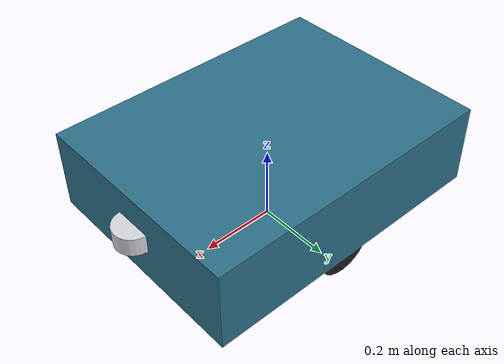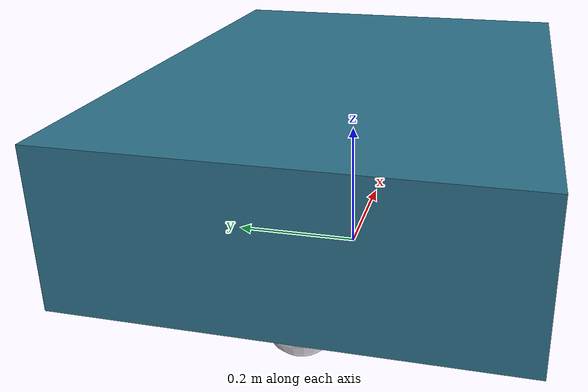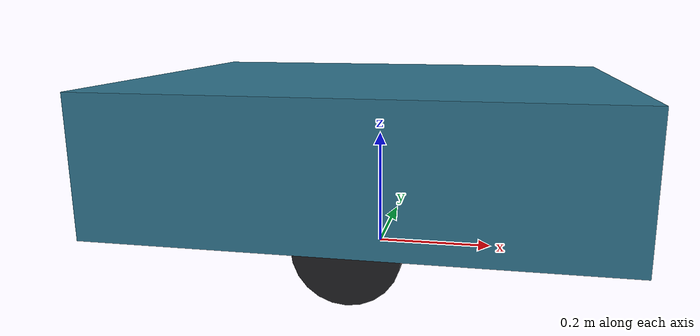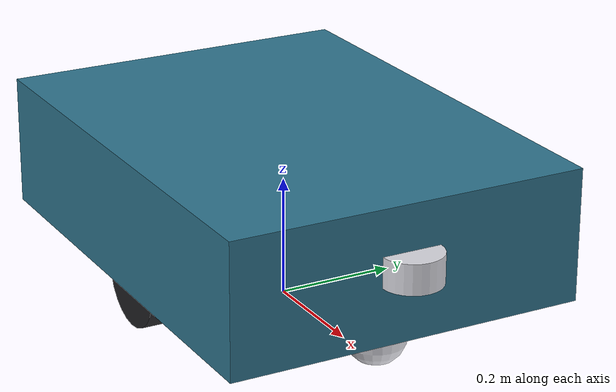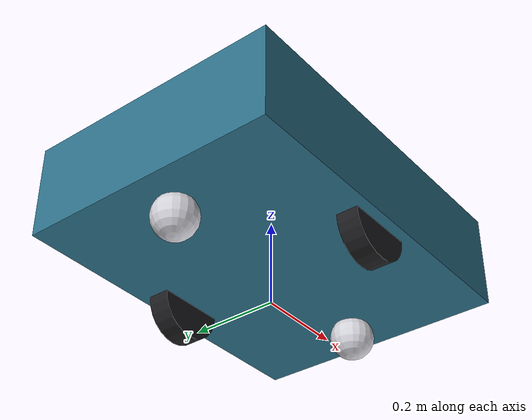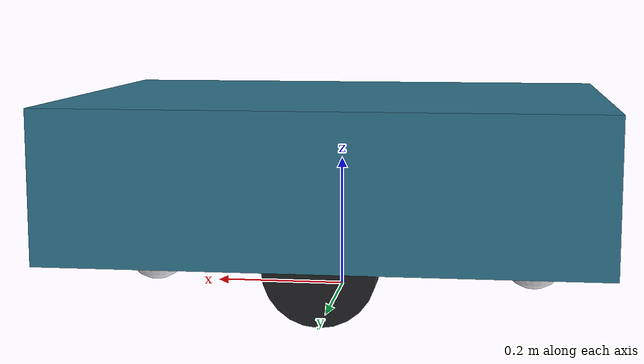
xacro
<?xml version="1.0"?>
<robot xmlns:xacro="http://www.ros.org/wiki/xacro" name="p2bot_lift_m">

  <!-- ..................... namespace / prefix ..................... -->
  <xacro:arg name="namespace" default=""/>
  <xacro:property name="ns" value="$(arg namespace)"/>
  <xacro:property name="fp" value="${ns + '/' if ns != '' else ''}"/>   <!-- link/frame/topic prefix -->

  <!-- ..................... 치수 ([표1] LIFT_M) ..................... -->
  <xacro:property name="chassis_l" value="0.8"/>
  <xacro:property name="chassis_w" value="0.6"/>
  <xacro:property name="total_h"   value="0.3"/>     <!-- 지면~상단 -->
  <xacro:property name="chassis_mass" value="60"/>

  <xacro:property name="wheel_radius" value="0.08"/>
  <xacro:property name="wheel_width"  value="0.05"/>
  <xacro:property name="wheel_track"  value="0.5"/>
  <xacro:property name="wheel_mass"   value="1.0"/>

  <!-- 섀시 범위 z: 0.08 ~ 0.30 -->
  <xacro:property name="chassis_h" value="${total_h - wheel_radius}"/>

  <xacro:property name="caster_radius" value="0.05"/>   <!-- < wheel_radius 여야 접지 성립 -->
  <xacro:property name="caster_x" value="0.30"/>

  <!-- 라이다: LIFT_L과 공통 스캔 평면 z=0.20. 섀시 내부 높이라 전방 돌출 마운트 -->
  <xacro:property name="lidar_z"      value="0.20"/>
  <xacro:property name="lidar_radius" value="0.05"/>
  <xacro:property name="lidar_x" value="${chassis_l/2}"/>

  <xacro:arg name="two_d_lidar_enabled" default="true"/>

  <!-- ..................... 재질 (커스텀 색) ..................... -->
  <material name="p2_body">  <color rgba="0.18 0.45 0.55 1.0"/></material>
  <material name="p2_wheel"> <color rgba="0.12 0.12 0.13 1.0"/></material>
  <material name="p2_trim">  <color rgba="0.85 0.85 0.88 1.0"/></material>

  <!-- ..................... 관성 매크로 ..................... -->
  <xacro:macro name="box_inertia" params="m x y z">
    <inertial><mass value="${m}"/>
      <inertia ixx="${m*(y*y+z*z)/12}" ixy="0" ixz="0"
               iyy="${m*(x*x+z*z)/12}" iyz="0" izz="${m*(x*x+y*y)/12}"/>
    </inertial>
  </xacro:macro>
  <xacro:macro name="cyl_inertia" params="m r h">
    <inertial><mass value="${m}"/>
      <inertia ixx="${m*(3*r*r+h*h)/12}" ixy="0" ixz="0"
               iyy="${m*(3*r*r+h*h)/12}" iyz="0" izz="${m*r*r/2}"/>
    </inertial>
  </xacro:macro>
  <xacro:macro name="sph_inertia" params="m r">
    <inertial><mass value="${m}"/>
      <inertia ixx="${2*m*r*r/5}" ixy="0" ixz="0"
               iyy="${2*m*r*r/5}" iyz="0" izz="${2*m*r*r/5}"/>
    </inertial>
  </xacro:macro>

  <!-- ..................... GAZEBO 플러그인 (모델 레벨만; ns 프리픽스) ..................... -->
  <!-- sensors/imu 시스템은 서버 레벨(시뮬당 1개)이라 월드(p2.sdf)에 둠 — 멀티로봇 씬 중복 crash 방지. -->
  <gazebo>
    <plugin filename="gz-sim-joint-state-publisher-system"
            name="gz::sim::systems::JointStatePublisher">
      <topic>/${fp}joint_states</topic>
      <joint_name>left_wheel_joint</joint_name>
      <joint_name>right_wheel_joint</joint_name>
    </plugin>
    <plugin filename="gz-sim-diff-drive-system" name="gz::sim::systems::DiffDrive">
      <left_joint>left_wheel_joint</left_joint>
      <right_joint>right_wheel_joint</right_joint>
      <wheel_separation>${wheel_track}</wheel_separation>
      <wheel_radius>${wheel_radius}</wheel_radius>
      <odom_publish_frequency>30</odom_publish_frequency>
      <topic>/${fp}cmd_vel</topic>
      <frame_id>${fp}odom</frame_id>
      <child_frame_id>${fp}base_footprint</child_frame_id>
    </plugin>
    <!-- ground-truth odom + tf(odom→base_footprint). tf는 로봇별 gz토픽 /{ns}/tf -->
    <plugin filename="gz-sim-odometry-publisher-system"
            name="gz::sim::systems::OdometryPublisher">
      <odom_frame>${fp}odom</odom_frame>
      <robot_base_frame>${fp}base_footprint</robot_base_frame>
      <odom_topic>/${fp}odom</odom_topic>
      <tf_topic>/${fp}tf</tf_topic>
      <dimensions>2</dimensions>
      <odom_publish_frequency>30</odom_publish_frequency>
    </plugin>
  </gazebo>

  <!-- ..................... BASE (링크명 프리픽스) ..................... -->
  <link name="${fp}base_footprint"/>
  <link name="${fp}base_link"/>
  <joint name="base_joint" type="fixed">
    <parent link="${fp}base_footprint"/>
    <child link="${fp}base_link"/>
    <origin xyz="0 0 ${chassis_h/2 + wheel_radius}" rpy="0 0 0"/>
  </joint>

  <link name="${fp}chassis_link">
    <collision><geometry><box size="${chassis_l} ${chassis_w} ${chassis_h}"/></geometry></collision>
    <visual>
      <geometry><box size="${chassis_l} ${chassis_w} ${chassis_h}"/></geometry>
      <material name="p2_body"/>
    </visual>
    <xacro:box_inertia m="${chassis_mass}" x="${chassis_l}" y="${chassis_w}" z="${chassis_h}"/>
  </link>
  <joint name="chassis_joint" type="fixed">
    <parent link="${fp}base_link"/><child link="${fp}chassis_link"/>
    <origin xyz="0 0 0" rpy="0 0 0"/>
  </joint>
  <gazebo reference="${fp}chassis_link"><material>Gazebo/Turquoise</material></gazebo>

  <!-- ..................... 구동륜 (joint 이름은 프리픽스 안 함, 링크는 함) ..................... -->
  <xacro:macro name="drive_wheel" params="side reflect">
    <link name="${fp}${side}_wheel">
      <collision>
        <origin xyz="0 0 0" rpy="${pi/2} 0 0"/>
        <geometry><cylinder radius="${wheel_radius}" length="${wheel_width}"/></geometry>
        <surface><friction><ode><mu>5.0</mu><mu2>5.0</mu2></ode></friction></surface>
      </collision>
      <visual>
        <origin xyz="0 0 0" rpy="${pi/2} 0 0"/>
        <geometry><cylinder radius="${wheel_radius}" length="${wheel_width}"/></geometry>
        <material name="p2_wheel"/>
      </visual>
      <xacro:cyl_inertia m="${wheel_mass}" r="${wheel_radius}" h="${wheel_width}"/>
    </link>
    <joint name="${side}_wheel_joint" type="continuous">
      <parent link="${fp}base_link"/><child link="${fp}${side}_wheel"/>
      <origin xyz="0 ${reflect*wheel_track/2} ${-chassis_h/2}" rpy="0 0 0"/>
      <axis xyz="0 1 0"/>
    </joint>
    <gazebo reference="${fp}${side}_wheel">
      <material>Gazebo/DarkGrey</material>
      <mu1>5.0</mu1><mu2>5.0</mu2>
    </gazebo>
  </xacro:macro>
  <xacro:drive_wheel side="left"  reflect="1"/>
  <xacro:drive_wheel side="right" reflect="-1"/>

  <!-- ..................... 캐스터 ..................... -->
  <xacro:macro name="caster" params="side sign">
    <link name="${fp}caster_${side}">
      <collision>
        <geometry><sphere radius="${caster_radius}"/></geometry>
        <surface><friction><ode><mu>0.0</mu><mu2>0.0</mu2></ode></friction></surface>
      </collision>
      <visual><geometry><sphere radius="${caster_radius}"/></geometry><material name="p2_trim"/></visual>
      <xacro:sph_inertia m="0.1" r="${caster_radius}"/>
    </link>
    <joint name="caster_${side}_joint" type="fixed">
      <parent link="${fp}base_link"/><child link="${fp}caster_${side}"/>
      <origin xyz="${sign*caster_x} 0 ${-chassis_h/2 - (wheel_radius-caster_radius)}" rpy="0 0 0"/>
    </joint>
    <gazebo reference="${fp}caster_${side}"><mu1>0.0</mu1><mu2>0.0</mu2></gazebo>
  </xacro:macro>
  <xacro:caster side="front" sign="1"/>
  <xacro:caster side="back"  sign="-1"/>

  <!-- ..................... 2D LIDAR (/{ns}/scan) ..................... -->
  <xacro:if value="$(arg two_d_lidar_enabled)">
    <link name="${fp}two_d_lidar">
      <visual><geometry><cylinder radius="${lidar_radius}" length="0.05"/></geometry>
        <material name="p2_trim"/></visual>
      <xacro:cyl_inertia m="0.1" r="${lidar_radius}" h="0.05"/>
    </link>
    <joint name="two_d_lidar_joint" type="fixed">
      <parent link="${fp}base_link"/><child link="${fp}two_d_lidar"/>
      <origin xyz="${lidar_x} 0 ${lidar_z - (chassis_h/2 + wheel_radius)}" rpy="0 0 0"/>
    </joint>
    <gazebo reference="${fp}two_d_lidar">
      <sensor name="gpu_lidar" type="gpu_lidar">
        <topic>/${fp}scan</topic>
        <update_rate>30</update_rate>
        <gz_frame_id>${fp}two_d_lidar</gz_frame_id>
        <lidar>
          <scan><horizontal>
            <samples>1500</samples><resolution>1</resolution>
            <min_angle>${radians(-89)}</min_angle><max_angle>${radians(89)}</max_angle>
          </horizontal></scan>
          <range><min>0.05</min><max>40.0</max><resolution>0.01</resolution></range>
          <noise><type>gaussian</type><mean>0.0</mean><stddev>0.005</stddev></noise>
        </lidar>
        <always_on>1</always_on><visualize>true</visualize>
      </sensor>
    </gazebo>
  </xacro:if>

  <!-- ..................... IMU ..................... -->
  <link name="${fp}imu_frame"/>
  <joint name="imu_joint" type="fixed">
    <parent link="${fp}base_link"/><child link="${fp}imu_frame"/>
    <origin xyz="0 0 ${chassis_h/2}" rpy="0 0 0"/>
  </joint>
  <gazebo reference="${fp}imu_frame">
    <sensor name="p2bot_imu" type="imu">
      <always_on>1</always_on><update_rate>50</update_rate>
      <gz_frame_id>${fp}imu_frame</gz_frame_id><topic>/${fp}imu</topic>
    </sensor>
  </gazebo>

</robot>
